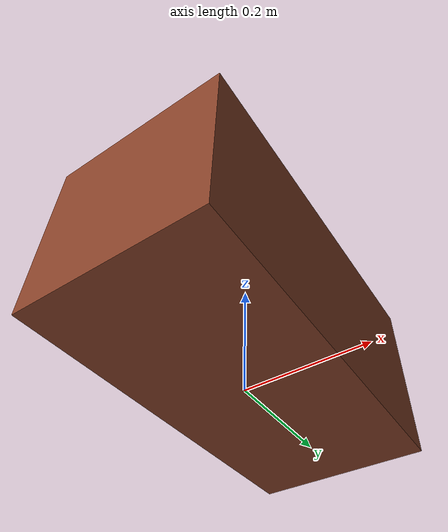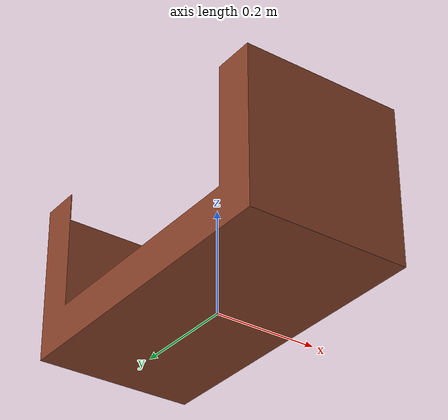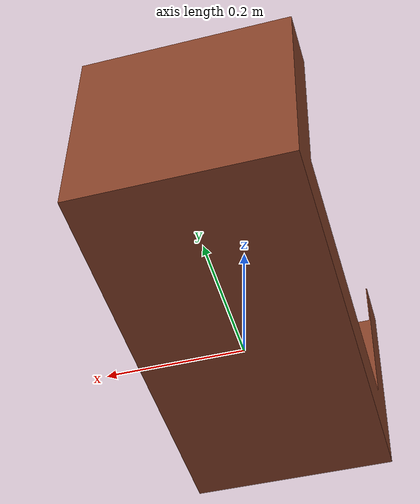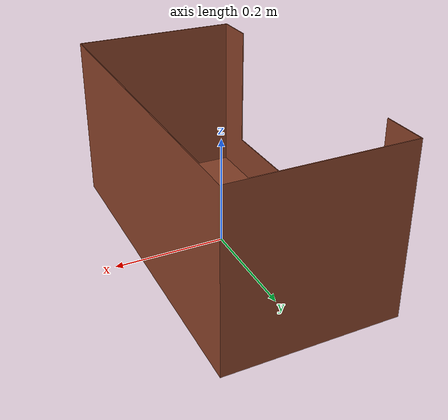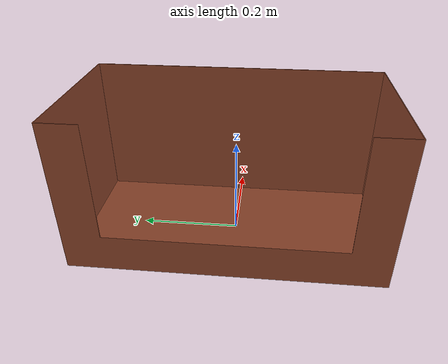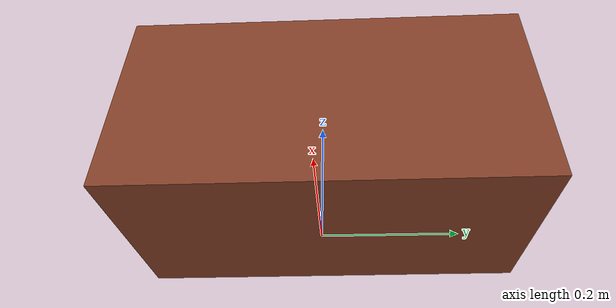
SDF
<?xml version='1.0'?>
<sdf version='1.6'>
  <model name='grocery_box_ori'>
    <link name='link_1'>
    <static>false</static>
      <inertial>
        <mass>0.01</mass>
        <inertia>
          <ixx>0.166667</ixx>
          <ixy>0.01</ixy>
          <ixz>0.01</ixz>
          <iyy>0.166667</iyy>
          <iyz>0.01</iyz>
          <izz>0.166667</izz>
        </inertia>
      </inertial>
      <pose frame=''>0.161925 -0.314325 0 0 -0 1.57</pose>
      <visual name='visual'>
        <pose frame=''>0 0 0 0 -0 0</pose>
        <geometry>
          <mesh>
            <uri>/home/user/catkin_ws/src/mobile_manipulation/srp-md/srp_md/model/grocery_models/grocery_box/meshes/Grocery Box.dae</uri>
            <scale>1 1 1</scale>
          </mesh>
        </geometry>
        <transparency>0</transparency>
        <cast_shadows>1</cast_shadows>
      </visual>
      <collision name="collision_1">
        <pose>0.01905 0.161925 0.015 0 0 1.57</pose>
        <geometry>
          <box>
            <size>0.3048 0.01 0.03</size>
          </box>
        </geometry>
      </collision>
      <collision name="collision_2">
        <pose>0.62865 0.161925 0.015 0 0 1.57</pose>
        <geometry>
          <box>
            <size>0.3048 0.01 0.03</size>
          </box>
        </geometry>
      </collision>
    </link>
    <static>0</static>
    <allow_auto_disable>1</allow_auto_disable>
  </model>
</sdf>
